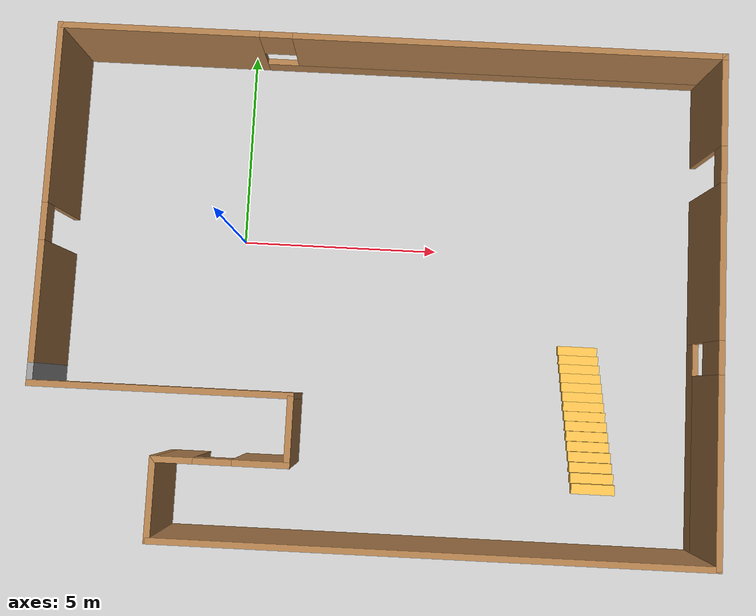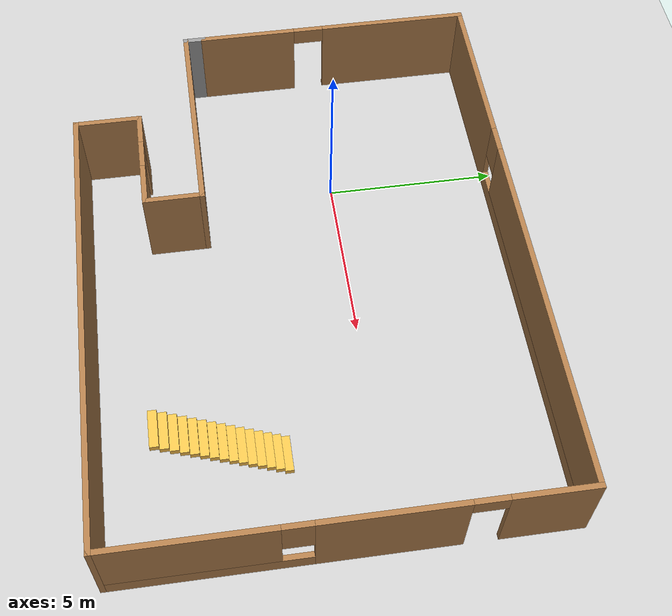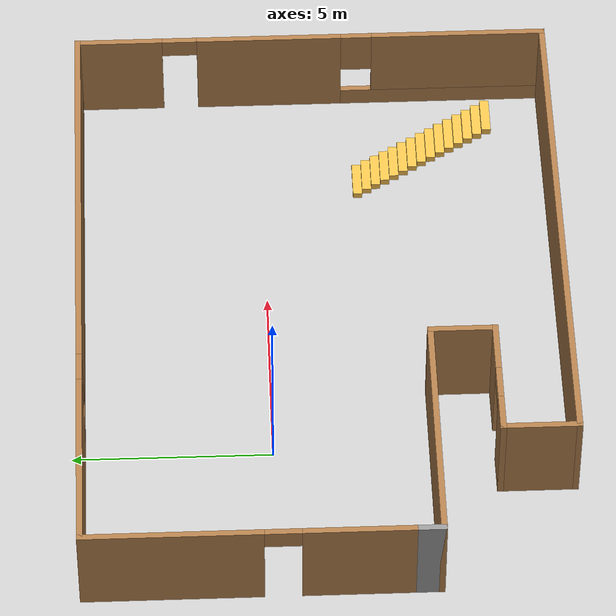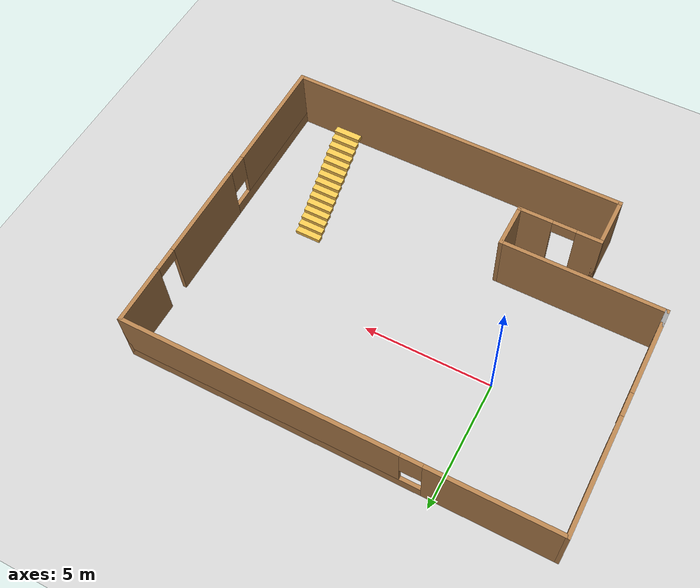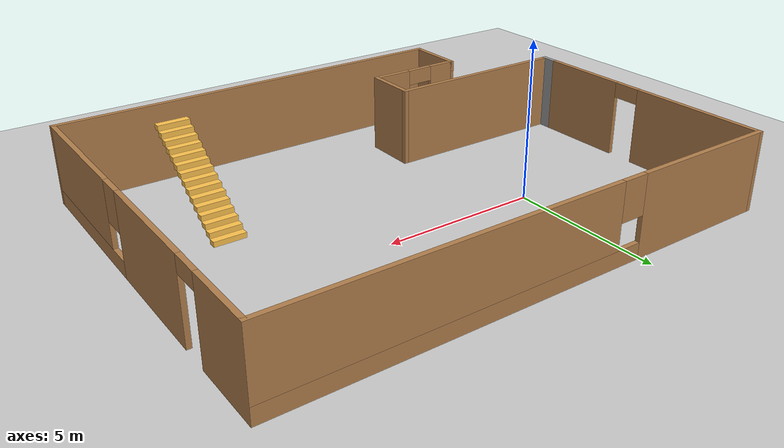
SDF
<sdf version="1.7">
 <world name="default">
  <light name="sun" type="directional">
   <pose>0 0 10 0 -0 0</pose>
   <diffuse>0.8 0.8 0.8 1</diffuse>
   <specular>0.2 0.2 0.2 1</specular>
   <attenuation>
    <range>1000</range>
    <constant>0.9</constant>
    <linear>0.01</linear>
    <quadratic>0.001</quadratic>
   </attenuation>
   <direction>-0.5 0.1 -0.9</direction>
   <spot><inner_angle>0</inner_angle><outer_angle>0</outer_angle><falloff>0</falloff></spot>
  </light>
  <model name="ground_plane">
   <static>1</static>
   <link name="link">
    <collision name="collision">
     <geometry><plane><normal>0 0 1</normal><size>100 100</size></plane></geometry>
     <surface>
      <contact><collide_bitmask>65535</collide_bitmask></contact>
      <friction><ode><mu>100</mu><mu2>50</mu2></ode></friction>
     </surface>
    </collision>
    <visual name="visual">
     <cast_shadows>0</cast_shadows>
     <geometry><plane><normal>0 0 1</normal><size>100 100</size></plane></geometry>
     <material>
      <script><uri>file://media/materials/scripts/gazebo.material</uri><name>Gazebo/Grey</name></script>
     </material>
    </visual>
   </link>
  </model>
  <gravity>0 0 -9.8</gravity>
  <magnetic_field>6e-06 2.3e-05 -4.2e-05</magnetic_field>
  <atmosphere type="adiabatic"/>
  <physics type="ode">
   <max_step_size>0.001</max_step_size>
   <real_time_factor>1</real_time_factor>
   <real_time_update_rate>1000</real_time_update_rate>
  </physics>
  <scene><ambient>0.4 0.4 0.4 1</ambient><background>0.7 0.7 0.7 1</background><shadows>1</shadows></scene>
  <audio><device>default</device></audio>
  <spherical_coordinates>
   <surface_model>EARTH_WGS84</surface_model>
   <latitude_deg>0</latitude_deg>
   <longitude_deg>0</longitude_deg>
   <elevation>0</elevation>
   <heading_deg>0</heading_deg>
  </spherical_coordinates>
  <model name="floor_plan">
   <pose>3.61906 -1.32968 0.216611 0 -0 0</pose>
   <link name="Stairs_0">
    <visual name="Stairs_0_Visual_0">
     <pose>5.11982 -1.12105 0.083333 0 -0 0</pose>
     <geometry><box><size>1 0.233333 0.166667</size></box></geometry>
     <material>
      <script><uri>file://media/materials/scripts/gazebo.material</uri><name>Gazebo/Grey</name></script>
      <ambient>1 0.764706 0.305882 1</ambient>
     </material>
     <meta><layer>0</layer></meta>
    </visual>
    <collision name="Stairs_0_Collision_0">
     <geometry><box><size>1 0.233333 0.166667</size></box></geometry>
     <pose>5.11982 -1.12105 0.083333 0 -0 0</pose>
    </collision>
    <visual name="Stairs_0_Visual_1">
     <pose>5.11982 -1.35439 0.25 0 -0 0</pose>
     <geometry><box><size>1 0.233333 0.166667</size></box></geometry>
     <material>
      <script><uri>file://media/materials/scripts/gazebo.material</uri><name>Gazebo/Grey</name></script>
      <ambient>1 0.764706 0.305882 1</ambient>
     </material>
     <meta><layer>0</layer></meta>
    </visual>
    <collision name="Stairs_0_Collision_1">
     <geometry><box><size>1 0.233333 0.166667</size></box></geometry>
     <pose>5.11982 -1.35439 0.25 0 -0 0</pose>
    </collision>
    <visual name="Stairs_0_Visual_2">
     <pose>5.11982 -1.58772 0.416667 0 -0 0</pose>
     <geometry><box><size>1 0.233333 0.166667</size></box></geometry>
     <material>
      <script><uri>file://media/materials/scripts/gazebo.material</uri><name>Gazebo/Grey</name></script>
      <ambient>1 0.764706 0.305882 1</ambient>
     </material>
     <meta><layer>0</layer></meta>
    </visual>
    <collision name="Stairs_0_Collision_2">
     <geometry><box><size>1 0.233333 0.166667</size></box></geometry>
     <pose>5.11982 -1.58772 0.416667 0 -0 0</pose>
    </collision>
    <visual name="Stairs_0_Visual_3">
     <pose>5.11982 -1.82105 0.583333 0 -0 0</pose>
     <geometry><box><size>1 0.233333 0.166667</size></box></geometry>
     <material>
      <script><uri>file://media/materials/scripts/gazebo.material</uri><name>Gazebo/Grey</name></script>
      <ambient>1 0.764706 0.305882 1</ambient>
     </material>
     <meta><layer>0</layer></meta>
    </visual>
    <collision name="Stairs_0_Collision_3">
     <geometry><box><size>1 0.233333 0.166667</size></box></geometry>
     <pose>5.11982 -1.82105 0.583333 0 -0 0</pose>
    </collision>
    <visual name="Stairs_0_Visual_4">
     <pose>5.11982 -2.05439 0.75 0 -0 0</pose>
     <geometry><box><size>1 0.233333 0.166667</size></box></geometry>
     <material>
      <script><uri>file://media/materials/scripts/gazebo.material</uri><name>Gazebo/Grey</name></script>
      <ambient>1 0.764706 0.305882 1</ambient>
     </material>
     <meta><layer>0</layer></meta>
    </visual>
    <collision name="Stairs_0_Collision_4">
     <geometry><box><size>1 0.233333 0.166667</size></box></geometry>
     <pose>5.11982 -2.05439 0.75 0 -0 0</pose>
    </collision>
    <visual name="Stairs_0_Visual_5">
     <pose>5.11982 -2.28772 0.916667 0 -0 0</pose>
     <geometry><box><size>1 0.233333 0.166667</size></box></geometry>
     <material>
      <script><uri>file://media/materials/scripts/gazebo.material</uri><name>Gazebo/Grey</name></script>
      <ambient>1 0.764706 0.305882 1</ambient>
     </material>
     <meta><layer>0</layer></meta>
    </visual>
    <collision name="Stairs_0_Collision_5">
     <geometry><box><size>1 0.233333 0.166667</size></box></geometry>
     <pose>5.11982 -2.28772 0.916667 0 -0 0</pose>
    </collision>
    <visual name="Stairs_0_Visual_6">
     <pose>5.11982 -2.52106 1.08333 0 -0 0</pose>
     <geometry><box><size>1 0.233333 0.166667</size></box></geometry>
     <material>
      <script><uri>file://media/materials/scripts/gazebo.material</uri><name>Gazebo/Grey</name></script>
      <ambient>1 0.764706 0.305882 1</ambient>
     </material>
     <meta><layer>0</layer></meta>
    </visual>
    <collision name="Stairs_0_Collision_6">
     <geometry><box><size>1 0.233333 0.166667</size></box></geometry>
     <pose>5.11982 -2.52106 1.08333 0 -0 0</pose>
    </collision>
    <visual name="Stairs_0_Visual_7">
     <pose>5.11982 -2.75439 1.25 0 -0 0</pose>
     <geometry><box><size>1 0.233333 0.166667</size></box></geometry>
     <material>
      <script><uri>file://media/materials/scripts/gazebo.material</uri><name>Gazebo/Grey</name></script>
      <ambient>1 0.764706 0.305882 1</ambient>
     </material>
     <meta><layer>0</layer></meta>
    </visual>
    <collision name="Stairs_0_Collision_7">
     <geometry><box><size>1 0.233333 0.166667</size></box></geometry>
     <pose>5.11982 -2.75439 1.25 0 -0 0</pose>
    </collision>
    <visual name="Stairs_0_Visual_8">
     <pose>5.11982 -2.98772 1.41667 0 -0 0</pose>
     <geometry><box><size>1 0.233333 0.166667</size></box></geometry>
     <material>
      <script><uri>file://media/materials/scripts/gazebo.material</uri><name>Gazebo/Grey</name></script>
      <ambient>1 0.764706 0.305882 1</ambient>
     </material>
     <meta><layer>0</layer></meta>
    </visual>
    <collision name="Stairs_0_Collision_8">
     <geometry><box><size>1 0.233333 0.166667</size></box></geometry>
     <pose>5.11982 -2.98772 1.41667 0 -0 0</pose>
    </collision>
    <visual name="Stairs_0_Visual_9">
     <pose>5.11982 -3.22105 1.58333 0 -0 0</pose>
     <geometry><box><size>1 0.233333 0.166667</size></box></geometry>
     <material>
      <script><uri>file://media/materials/scripts/gazebo.material</uri><name>Gazebo/Grey</name></script>
      <ambient>1 0.764706 0.305882 1</ambient>
     </material>
     <meta><layer>0</layer></meta>
    </visual>
    <collision name="Stairs_0_Collision_9">
     <geometry><box><size>1 0.233333 0.166667</size></box></geometry>
     <pose>5.11982 -3.22105 1.58333 0 -0 0</pose>
    </collision>
    <visual name="Stairs_0_Visual_10">
     <pose>5.11982 -3.45439 1.75 0 -0 0</pose>
     <geometry><box><size>1 0.233333 0.166667</size></box></geometry>
     <material>
      <script><uri>file://media/materials/scripts/gazebo.material</uri><name>Gazebo/Grey</name></script>
      <ambient>1 0.764706 0.305882 1</ambient>
     </material>
     <meta><layer>0</layer></meta>
    </visual>
    <collision name="Stairs_0_Collision_10">
     <geometry><box><size>1 0.233333 0.166667</size></box></geometry>
     <pose>5.11982 -3.45439 1.75 0 -0 0</pose>
    </collision>
    <visual name="Stairs_0_Visual_11">
     <pose>5.11982 -3.68772 1.91667 0 -0 0</pose>
     <geometry><box><size>1 0.233333 0.166667</size></box></geometry>
     <material>
      <script><uri>file://media/materials/scripts/gazebo.material</uri><name>Gazebo/Grey</name></script>
      <ambient>1 0.764706 0.305882 1</ambient>
     </material>
     <meta><layer>0</layer></meta>
    </visual>
    <collision name="Stairs_0_Collision_11">
     <geometry><box><size>1 0.233333 0.166667</size></box></geometry>
     <pose>5.11982 -3.68772 1.91667 0 -0 0</pose>
    </collision>
    <visual name="Stairs_0_Visual_12">
     <pose>5.11982 -3.92105 2.08333 0 -0 0</pose>
     <geometry><box><size>1 0.233333 0.166667</size></box></geometry>
     <material>
      <script><uri>file://media/materials/scripts/gazebo.material</uri><name>Gazebo/Grey</name></script>
      <ambient>1 0.764706 0.305882 1</ambient>
     </material>
     <meta><layer>0</layer></meta>
    </visual>
    <collision name="Stairs_0_Collision_12">
     <geometry><box><size>1 0.233333 0.166667</size></box></geometry>
     <pose>5.11982 -3.92105 2.08333 0 -0 0</pose>
    </collision>
    <visual name="Stairs_0_Visual_13">
     <pose>5.11982 -4.15439 2.25 0 -0 0</pose>
     <geometry><box><size>1 0.233333 0.166667</size></box></geometry>
     <material>
      <script><uri>file://media/materials/scripts/gazebo.material</uri><name>Gazebo/Grey</name></script>
      <ambient>1 0.764706 0.305882 1</ambient>
     </material>
     <meta><layer>0</layer></meta>
    </visual>
    <collision name="Stairs_0_Collision_13">
     <geometry><box><size>1 0.233333 0.166667</size></box></geometry>
     <pose>5.11982 -4.15439 2.25 0 -0 0</pose>
    </collision>
    <visual name="Stairs_0_Visual_14">
     <pose>5.11982 -4.38772 2.41667 0 -0 0</pose>
     <geometry><box><size>1 0.233333 0.166667</size></box></geometry>
     <material>
      <script><uri>file://media/materials/scripts/gazebo.material</uri><name>Gazebo/Grey</name></script>
      <ambient>1 0.764706 0.305882 1</ambient>
     </material>
     <meta><layer>0</layer></meta>
    </visual>
    <collision name="Stairs_0_Collision_14">
     <geometry><box><size>1 0.233333 0.166667</size></box></geometry>
     <pose>5.11982 -4.38772 2.41667 0 -0 0</pose>
    </collision>
   </link>
   <link name="Wall_0">
    <pose>-8.05 2 0 0 -0 1.5708</pose>
    <visual name="Wall_0_Visual_0">
     <pose>-2.67709 0 1.25 0 -0 0</pose>
     <geometry><box><size>2.89581 0.15 2.5</size></box></geometry>
     <material>
      <script><uri>file://media/materials/scripts/gazebo.material</uri><name>Gazebo/Wood</name></script>
      <ambient>1 1 1 1</ambient>
     </material>
     <meta><layer>0</layer></meta>
    </visual>
    <collision name="Wall_0_Collision_0">
     <geometry><box><size>2.89581 0.15 2.5</size></box></geometry>
     <pose>-2.67709 0 1.25 0 -0 0</pose>
    </collision>
    <visual name="Wall_0_Visual_1">
     <pose>1.89791 0 1.25 0 -0 0</pose>
     <geometry><box><size>4.45419 0.15 2.5</size></box></geometry>
     <material>
      <script><uri>file://media/materials/scripts/gazebo.material</uri><name>Gazebo/Wood</name></script>
      <ambient>1 1 1 1</ambient>
     </material>
     <meta><layer>0</layer></meta>
    </visual>
    <collision name="Wall_0_Collision_1">
     <geometry><box><size>4.45419 0.15 2.5</size></box></geometry>
     <pose>1.89791 0 1.25 0 -0 0</pose>
    </collision>
    <visual name="Wall_0_Visual_2">
     <pose>-0.779188 0 2.25 0 -0 0</pose>
     <geometry><box><size>0.9 0.15 0.5</size></box></geometry>
     <material>
      <script><uri>file://media/materials/scripts/gazebo.material</uri><name>Gazebo/Wood</name></script>
      <ambient>1 1 1 1</ambient>
     </material>
     <meta><layer>0</layer></meta>
    </visual>
    <collision name="Wall_0_Collision_2">
     <geometry><box><size>0.9 0.15 0.5</size></box></geometry>
     <pose>-0.779188 0 2.25 0 -0 0</pose>
    </collision>
   </link>
   <link name="Wall_1">
    <pose>0 6.05 0 0 -0 0</pose>
    <visual name="Wall_1_Visual_0">
     <pose>-5.67779 0 1.25 0 -0 0</pose>
     <geometry><box><size>4.89442 0.15 2.5</size></box></geometry>
     <material>
      <script><uri>file://media/materials/scripts/gazebo.material</uri><name>Gazebo/Wood</name></script>
      <ambient>1 1 1 1</ambient>
     </material>
     <meta><layer>0</layer></meta>
    </visual>
    <collision name="Wall_1_Collision_0">
     <geometry><box><size>4.89442 0.15 2.5</size></box></geometry>
     <pose>-5.67779 0 1.25 0 -0 0</pose>
    </collision>
    <visual name="Wall_1_Visual_1">
     <pose>2.44721 0 0.25 0 -0 0</pose>
     <geometry><box><size>11.3556 0.15 0.5</size></box></geometry>
     <material>
      <script><uri>file://media/materials/scripts/gazebo.material</uri><name>Gazebo/Wood</name></script>
      <ambient>1 1 1 1</ambient>
     </material>
     <meta><layer>0</layer></meta>
    </visual>
    <collision name="Wall_1_Collision_1">
     <geometry><box><size>11.3556 0.15 0.5</size></box></geometry>
     <pose>2.44721 0 0.25 0 -0 0</pose>
    </collision>
    <visual name="Wall_1_Visual_2">
     <pose>2.84721 0 1.5 0 -0 0</pose>
     <geometry><box><size>10.5556 0.15 2</size></box></geometry>
     <material>
      <script><uri>file://media/materials/scripts/gazebo.material</uri><name>Gazebo/Wood</name></script>
      <ambient>1 1 1 1</ambient>
     </material>
     <meta><layer>0</layer></meta>
    </visual>
    <collision name="Wall_1_Collision_2">
     <geometry><box><size>10.5556 0.15 2</size></box></geometry>
     <pose>2.84721 0 1.5 0 -0 0</pose>
    </collision>
    <visual name="Wall_1_Visual_3">
     <pose>-2.83058 0 1.9 0 -0 0</pose>
     <geometry><box><size>0.8 0.15 1.2</size></box></geometry>
     <material>
      <script><uri>file://media/materials/scripts/gazebo.material</uri><name>Gazebo/Wood</name></script>
      <ambient>1 1 1 1</ambient>
     </material>
     <meta><layer>0</layer></meta>
    </visual>
    <collision name="Wall_1_Collision_3">
     <geometry><box><size>0.8 0.15 1.2</size></box></geometry>
     <pose>-2.83058 0 1.9 0 -0 0</pose>
    </collision>
   </link>
   <link name="Wall_2">
    <pose>8.05 0 0 0 -0 -1.5708</pose>
    <visual name="Wall_2_Visual_0">
     <pose>-4.98845 0 1.25 0 -0 0</pose>
     <geometry><box><size>2.2731 0.15 2.5</size></box></geometry>
     <material>
      <script><uri>file://media/materials/scripts/gazebo.material</uri><name>Gazebo/Wood</name></script>
      <ambient>1 1 1 1</ambient>
     </material>
     <meta><layer>0</layer></meta>
    </visual>
    <collision name="Wall_2_Collision_0">
     <geometry><box><size>2.2731 0.15 2.5</size></box></geometry>
     <pose>-4.98845 0 1.25 0 -0 0</pose>
    </collision>
    <visual name="Wall_2_Visual_1">
     <pose>-1.07269 0 1.25 0 -0 0</pose>
     <geometry><box><size>3.75842 0.15 2.5</size></box></geometry>
     <material>
      <script><uri>file://media/materials/scripts/gazebo.material</uri><name>Gazebo/Wood</name></script>
      <ambient>1 1 1 1</ambient>
     </material>
     <meta><layer>0</layer></meta>
    </visual>
    <collision name="Wall_2_Collision_1">
     <geometry><box><size>3.75842 0.15 2.5</size></box></geometry>
     <pose>-1.07269 0 1.25 0 -0 0</pose>
    </collision>
    <visual name="Wall_2_Visual_2">
     <pose>3.46576 0 0.25 0 -0 0</pose>
     <geometry><box><size>5.31848 0.15 0.5</size></box></geometry>
     <material>
      <script><uri>file://media/materials/scripts/gazebo.material</uri><name>Gazebo/Wood</name></script>
      <ambient>1 1 1 1</ambient>
     </material>
     <meta><layer>0</layer></meta>
    </visual>
    <collision name="Wall_2_Collision_2">
     <geometry><box><size>5.31848 0.15 0.5</size></box></geometry>
     <pose>3.46576 0 0.25 0 -0 0</pose>
    </collision>
    <visual name="Wall_2_Visual_3">
     <pose>3.86576 0 1.5 0 -0 0</pose>
     <geometry><box><size>4.51848 0.15 2</size></box></geometry>
     <material>
      <script><uri>file://media/materials/scripts/gazebo.material</uri><name>Gazebo/Wood</name></script>
      <ambient>1 1 1 1</ambient>
     </material>
     <meta><layer>0</layer></meta>
    </visual>
    <collision name="Wall_2_Collision_3">
     <geometry><box><size>4.51848 0.15 2</size></box></geometry>
     <pose>3.86576 0 1.5 0 -0 0</pose>
    </collision>
    <visual name="Wall_2_Visual_4">
     <pose>1.20652 0 1.9 0 -0 0</pose>
     <geometry><box><size>0.8 0.15 1.2</size></box></geometry>
     <material>
      <script><uri>file://media/materials/scripts/gazebo.material</uri><name>Gazebo/Wood</name></script>
      <ambient>1 1 1 1</ambient>
     </material>
     <meta><layer>0</layer></meta>
    </visual>
    <collision name="Wall_2_Collision_4">
     <geometry><box><size>0.8 0.15 1.2</size></box></geometry>
     <pose>1.20652 0 1.9 0 -0 0</pose>
    </collision>
    <visual name="Wall_2_Visual_5">
     <pose>-3.4019 0 2.25 0 -0 0</pose>
     <geometry><box><size>0.9 0.15 0.5</size></box></geometry>
     <material>
      <script><uri>file://media/materials/scripts/gazebo.material</uri><name>Gazebo/Wood</name></script>
      <ambient>1 1 1 1</ambient>
     </material>
     <meta><layer>0</layer></meta>
    </visual>
    <collision name="Wall_2_Collision_5">
     <geometry><box><size>0.9 0.15 0.5</size></box></geometry>
     <pose>-3.4019 0 2.25 0 -0 0</pose>
    </collision>
   </link>
   <link name="Wall_3">
    <collision name="Wall_3_Collision">
     <geometry><box><size>13.25 0.15 2.5</size></box></geometry>
     <pose>0 0 1.25 0 -0 0</pose>
    </collision>
    <visual name="Wall_3_Visual">
     <pose>0 0 1.25 0 -0 0</pose>
     <geometry><box><size>13.25 0.15 2.5</size></box></geometry>
     <material>
      <script><uri>file://media/materials/scripts/gazebo.material</uri><name>Gazebo/Wood</name></script>
      <ambient>1 1 1 1</ambient>
     </material>
     <meta><layer>0</layer></meta>
    </visual>
    <pose>1.5 -6.05 0 0 -0 3.14159</pose>
   </link>
   <link name="Wall_4">
    <collision name="Wall_4_Collision">
     <geometry><box><size>2 0.15 2.5</size></box></geometry>
     <pose>0 0 1.25 0 -0 0</pose>
    </collision>
    <visual name="Wall_4_Visual">
     <pose>0 0 1.25 0 -0 0</pose>
     <geometry><box><size>2 0.15 2.5</size></box></geometry>
     <material>
      <script><uri>file://media/materials/scripts/gazebo.material</uri><name>Gazebo/Wood</name></script>
      <ambient>1 1 1 1</ambient>
     </material>
     <meta><layer>0</layer></meta>
    </visual>
    <pose>-5.05 -5.125 0 0 -0 1.5708</pose>
   </link>
   <link name="Wall_5">
    <pose>-3.5 -4.2 0 0 -0 0</pose>
    <visual name="Wall_5_Visual_0">
     <pose>-1.12494 0 1.25 0 -0 0</pose>
     <geometry><box><size>1.00013 0.15 2.5</size></box></geometry>
     <material>
      <script><uri>file://media/materials/scripts/gazebo.material</uri><name>Gazebo/Wood</name></script>
      <ambient>1 1 1 1</ambient>
     </material>
     <meta><layer>0</layer></meta>
    </visual>
    <collision name="Wall_5_Collision_0">
     <geometry><box><size>1.00013 0.15 2.5</size></box></geometry>
     <pose>-1.12494 0 1.25 0 -0 0</pose>
    </collision>
    <visual name="Wall_5_Visual_1">
     <pose>0.950065 0 1.25 0 -0 0</pose>
     <geometry><box><size>1.34987 0.15 2.5</size></box></geometry>
     <material>
      <script><uri>file://media/materials/scripts/gazebo.material</uri><name>Gazebo/Wood</name></script>
      <ambient>1 1 1 1</ambient>
     </material>
     <meta><layer>0</layer></meta>
    </visual>
    <collision name="Wall_5_Collision_1">
     <geometry><box><size>1.34987 0.15 2.5</size></box></geometry>
     <pose>0.950065 0 1.25 0 -0 0</pose>
    </collision>
    <visual name="Wall_5_Visual_2">
     <pose>-0.17487 0 2.25 0 -0 0</pose>
     <geometry><box><size>0.9 0.15 0.5</size></box></geometry>
     <material>
      <script><uri>file://media/materials/scripts/gazebo.material</uri><name>Gazebo/Wood</name></script>
      <ambient>1 1 1 1</ambient>
     </material>
     <meta><layer>0</layer></meta>
    </visual>
    <collision name="Wall_5_Collision_2">
     <geometry><box><size>0.9 0.15 0.5</size></box></geometry>
     <pose>-0.17487 0 2.25 0 -0 0</pose>
    </collision>
   </link>
   <link name="Wall_6">
    <collision name="Wall_6_Collision">
     <geometry><box><size>1.75 0.15 2.5</size></box></geometry>
     <pose>0 0 1.25 0 -0 0</pose>
    </collision>
    <visual name="Wall_6_Visual">
     <pose>0 0 1.25 0 -0 0</pose>
     <geometry><box><size>1.75 0.15 2.5</size></box></geometry>
     <material>
      <script><uri>file://media/materials/scripts/gazebo.material</uri><name>Gazebo/Wood</name></script>
      <ambient>1 1 1 1</ambient>
     </material>
     <meta><layer>0</layer></meta>
    </visual>
    <pose>-1.95 -3.4 0 0 -0 1.5708</pose>
   </link>
   <link name="Wall_7">
    <collision name="Wall_7_Collision">
     <geometry><box><size>6.25 0.15 2.5</size></box></geometry>
     <pose>0 0 1.25 0 -0 0</pose>
    </collision>
    <visual name="Wall_7_Visual">
     <pose>0 0 1.25 0 -0 0</pose>
     <geometry><box><size>6.25 0.15 2.5</size></box></geometry>
     <material>
      <script><uri>file://media/materials/scripts/gazebo.material</uri><name>Gazebo/Wood</name></script>
      <ambient>1 1 1 1</ambient>
     </material>
     <meta><layer>0</layer></meta>
    </visual>
    <pose>-5 -2.6 0 0 -0 3.14159</pose>
   </link>
   <link name="Wall_8">
    <collision name="Wall_8_Collision">
     <geometry><box><size>0.7 0.15 2.5</size></box></geometry>
     <pose>0 0 1.25 0 -0 0</pose>
    </collision>
    <visual name="Wall_8_Visual">
     <pose>0 0 1.25 0 -0 0</pose>
     <geometry><box><size>0.7 0.15 2.5</size></box></geometry>
     <material>
      <script><uri>file://media/materials/scripts/gazebo.material</uri><name>Gazebo/Grey</name></script>
      <ambient>1 1 1 1</ambient>
     </material>
     <meta><layer>0</layer></meta>
    </visual>
    <pose>-8.05 -2.325 0 0 -0 1.5708</pose>
   </link>
   <static>1</static>
  </model>
 </world>
</sdf>
